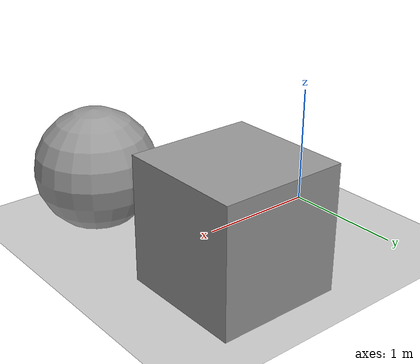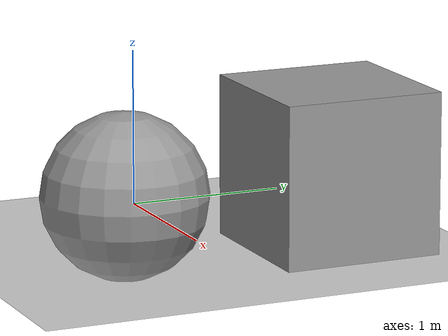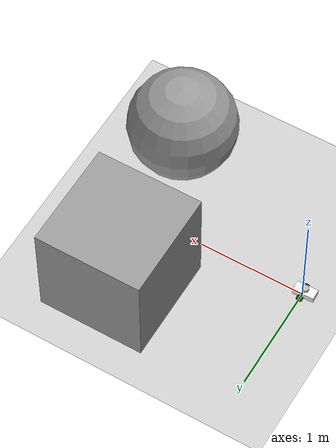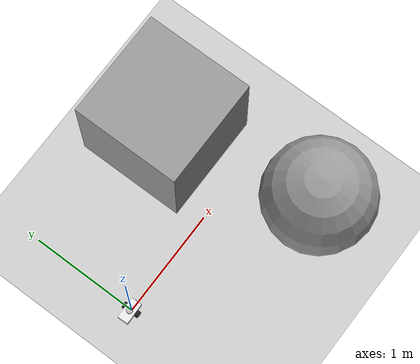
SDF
<sdf version="1.7">
 <world name="default">
  <light name="sun" type="directional">
   <pose>0 0 10 0 -0 0</pose>
   <diffuse>0.8 0.8 0.8 1</diffuse>
   <specular>0.2 0.2 0.2 1</specular>
   <attenuation>
    <range>1000</range>
    <constant>0.9</constant>
    <linear>0.01</linear>
    <quadratic>0.001</quadratic>
   </attenuation>
   <direction>-0.5 0.1 -0.9</direction>
   <spot><inner_angle>0</inner_angle><outer_angle>0</outer_angle><falloff>0</falloff></spot>
  </light>
  <model name="ground_plane">
   <static>1</static>
   <link name="link">
    <collision name="collision">
     <geometry><plane><normal>0 0 1</normal><size>100 100</size></plane></geometry>
     <surface>
      <contact><collide_bitmask>65535</collide_bitmask></contact>
      <friction><ode><mu>100</mu><mu2>50</mu2></ode></friction>
     </surface>
    </collision>
    <visual name="visual">
     <cast_shadows>0</cast_shadows>
     <geometry><plane><normal>0 0 1</normal><size>100 100</size></plane></geometry>
     <material>
      <script><uri>file://media/materials/scripts/gazebo.material</uri><name>Gazebo/Grey</name></script>
     </material>
    </visual>
   </link>
  </model>
  <gravity>0 0 -9.8</gravity>
  <magnetic_field>6e-06 2.3e-05 -4.2e-05</magnetic_field>
  <atmosphere type="adiabatic"/>
  <physics type="ode">
   <max_step_size>0.001</max_step_size>
   <real_time_factor>1</real_time_factor>
   <real_time_update_rate>1000</real_time_update_rate>
  </physics>
  <scene><ambient>0.4 0.4 0.4 1</ambient><background>0.7 0.7 0.7 1</background><shadows>1</shadows></scene>
  <audio><device>default</device></audio>
  <spherical_coordinates>
   <surface_model>EARTH_WGS84</surface_model>
   <latitude_deg>0</latitude_deg>
   <longitude_deg>0</longitude_deg>
   <elevation>0</elevation>
   <heading_deg>0</heading_deg>
  </spherical_coordinates>
  <model name="with_robot">
   <link name="base_link">
    <inertial>
     <pose>-0.031667 0 0.025 0 -0 0</pose>
     <mass>0.6</mass>
     <inertia>
      <ixx>0.000677667</ixx>
      <ixy>0</ixy>
      <ixz>-0.000175</ixz>
      <iyy>0.002336</iyy>
      <iyz>0</iyz>
      <izz>0.00252767</izz>
     </inertia>
    </inertial>
    <collision name="base_link_fixed_joint_lump__body_collision">
     <pose>-0.02 0 0.03 0 -0 0</pose>
     <geometry><box><size>0.2 0.1 0.06</size></box></geometry>
    </collision>
    <collision name="base_link_fixed_joint_lump__camera_link_collision_1">
     <pose>0.08 0 0.03 0 -0 0</pose>
     <geometry><box><size>0.01 0.03 0.03</size></box></geometry>
    </collision>
    <collision name="base_link_fixed_joint_lump__caster_wheel_collision_2">
     <pose>-0.09 0 0 0 -0 0</pose>
     <geometry><sphere><radius>0.03</radius></sphere></geometry>
     <surface><friction><ode><mu>0.001</mu><mu2>0.001</mu2></ode></friction></surface>
    </collision>
    <collision name="base_link_fixed_joint_lump__laser_frame_collision_3">
     <pose>-0.02 0 0.075 0 -0 0</pose>
     <geometry><cylinder><length>0.03</length><radius>0.03</radius></cylinder></geometry>
    </collision>
    <visual name="base_link_fixed_joint_lump__body_visual">
     <pose>-0.02 0 0.03 0 -0 0</pose>
     <geometry><box><size>0.2 0.1 0.06</size></box></geometry>
     <material>
      <script><name>Gazebo/White</name><uri>file://media/materials/scripts/gazebo.material</uri></script>
     </material>
    </visual>
    <visual name="base_link_fixed_joint_lump__camera_link_visual_1">
     <pose>0.08 0 0.03 0 -0 0</pose>
     <geometry><box><size>0.01 0.03 0.03</size></box></geometry>
     <material>
      <script><name>Gazebo/Red</name><uri>file://media/materials/scripts/gazebo.material</uri></script>
     </material>
    </visual>
    <visual name="base_link_fixed_joint_lump__caster_wheel_visual_2">
     <pose>-0.09 0 0 0 -0 0</pose>
     <geometry><sphere><radius>0.03</radius></sphere></geometry>
     <material>
      <script><name>Gazebo/Blue</name><uri>file://media/materials/scripts/gazebo.material</uri></script>
     </material>
    </visual>
    <visual name="base_link_fixed_joint_lump__laser_frame_visual_3">
     <pose>-0.02 0 0.075 0 -0 0</pose>
     <geometry><cylinder><length>0.03</length><radius>0.03</radius></cylinder></geometry>
    </visual>
    <sensor name="camera" type="camera">
     <visualize>1</visualize>
     <update_rate>10</update_rate>
     <camera>
      <horizontal_fov>1.089</horizontal_fov>
      <image><format>B8G8R8</format><width>640</width><height>480</height></image>
      <clip><near>0.05</near><far>8</far></clip>
     </camera>
     <plugin name="camera_controller" filename="libgazebo_ros_camera.so">
      <frame_name>camera_link_optical</frame_name>
      <min_depth>0.1</min_depth>
      <max_depth>100.0</max_depth>
     </plugin>
     <pose>0.08 0 0.03 0 -0 0</pose>
    </sensor>
   </link>
   <joint name="left_wheel_joint" type="revolute">
    <pose relative_to="base_link">0 0.065 0 -1.5708 0 0</pose>
    <parent>base_link</parent>
    <child>left_wheel</child>
    <axis>
     <xyz>0 0 1</xyz>
     <limit><lower>-1e+16</lower><upper>1e+16</upper></limit>
     <dynamics><spring_reference>0</spring_reference><spring_stiffness>0</spring_stiffness></dynamics>
    </axis>
   </joint>
   <link name="left_wheel">
    <pose relative_to="left_wheel_joint">0 0 0 0 -0 0</pose>
    <inertial>
     <mass>0.1</mass>
     <inertia><ixx>3e-05</ixx><ixy>0</ixy><ixz>0</ixz><iyy>3e-05</iyy><iyz>0</iyz><izz>4.5e-05</izz></inertia>
    </inertial>
    <collision name="left_wheel_collision">
     <geometry><cylinder><length>0.03</length><radius>0.03</radius></cylinder></geometry>
    </collision>
    <visual name="left_wheel_visual">
     <geometry><cylinder><length>0.03</length><radius>0.03</radius></cylinder></geometry>
     <material>
      <script><name>Gazebo/Black</name><uri>file://media/materials/scripts/gazebo.material</uri></script>
     </material>
    </visual>
   </link>
   <joint name="right_wheel_joint" type="revolute">
    <pose relative_to="base_link">0 -0.065 0 1.5708 -0 0</pose>
    <parent>base_link</parent>
    <child>right_wheel</child>
    <axis>
     <xyz>0 0 -1</xyz>
     <limit><lower>-1e+16</lower><upper>1e+16</upper></limit>
     <dynamics><spring_reference>0</spring_reference><spring_stiffness>0</spring_stiffness></dynamics>
    </axis>
   </joint>
   <link name="right_wheel">
    <pose relative_to="right_wheel_joint">0 0 0 0 -0 0</pose>
    <inertial>
     <mass>0.1</mass>
     <inertia><ixx>3e-05</ixx><ixy>0</ixy><ixz>0</ixz><iyy>3e-05</iyy><iyz>0</iyz><izz>4.5e-05</izz></inertia>
    </inertial>
    <collision name="right_wheel_collision">
     <geometry><cylinder><length>0.03</length><radius>0.03</radius></cylinder></geometry>
    </collision>
    <visual name="right_wheel_visual">
     <geometry><cylinder><length>0.03</length><radius>0.03</radius></cylinder></geometry>
     <material>
      <script><name>Gazebo/Black</name><uri>file://media/materials/scripts/gazebo.material</uri></script>
     </material>
    </visual>
   </link>
   <static>0</static>
   <plugin name="diff_drive" filename="libgazebo_ros_diff_drive.so">
    <left_joint>left_wheel_joint</left_joint>
    <right_joint>right_wheel_joint</right_joint>
    <wheel_separation>0.35</wheel_separation>
    <wheel_diameter>0.1</wheel_diameter>
    <max_wheel_torque>200</max_wheel_torque>
    <max_wheel_acceleration>10.0</max_wheel_acceleration>
    <odometry_frame>odom</odometry_frame>
    <robot_base_frame>base_link</robot_base_frame>
    <publish_odom>1</publish_odom>
    <publish_odom_tf>1</publish_odom_tf>
    <publish_wheel_tf>1</publish_wheel_tf>
   </plugin>
   <pose>-0.00494 0.000514 0.03 0 -2e-06 0.029099</pose>
  </model>
  <model name="unit_box">
   <pose>1.38932 0.706411 0.499995 0 -1e-05 0</pose>
   <link name="link">
    <inertial>
     <mass>1</mass>
     <inertia>
      <ixx>0.166667</ixx>
      <ixy>0</ixy>
      <ixz>0</ixz>
      <iyy>0.166667</iyy>
      <iyz>0</iyz>
      <izz>0.166667</izz>
     </inertia>
    </inertial>
    <collision name="collision"><geometry><box><size>1 1 1</size></box></geometry></collision>
    <visual name="visual">
     <geometry><box><size>1 1 1</size></box></geometry>
     <material>
      <script><name>Gazebo/Grey</name><uri>file://media/materials/scripts/gazebo.material</uri></script>
     </material>
    </visual>
    <color rgba="0 1 0 1"/>
   </link>
  </model>
  <model name="unit_sphere">
   <pose>1.61982 -0.722386 0.5 0 -0 0</pose>
   <link name="link">
    <inertial>
     <mass>1</mass>
     <inertia><ixx>0.1</ixx><ixy>0</ixy><ixz>0</ixz><iyy>0.1</iyy><iyz>0</iyz><izz>0.1</izz></inertia>
    </inertial>
    <collision name="collision"><geometry><sphere><radius>0.5</radius></sphere></geometry></collision>
    <visual name="visual">
     <geometry><sphere><radius>0.5</radius></sphere></geometry>
     <material>
      <script><name>Gazebo/Grey</name><uri>file://media/materials/scripts/gazebo.material</uri></script>
     </material>
    </visual>
   </link>
  </model>
 </world>
</sdf>
